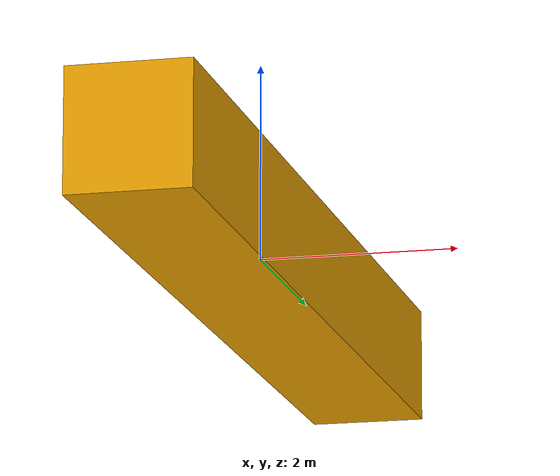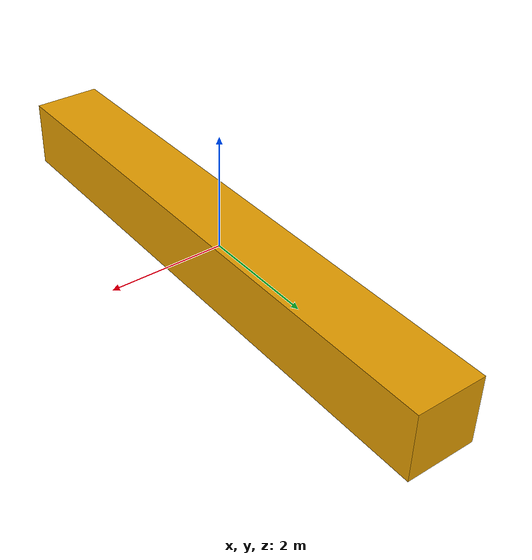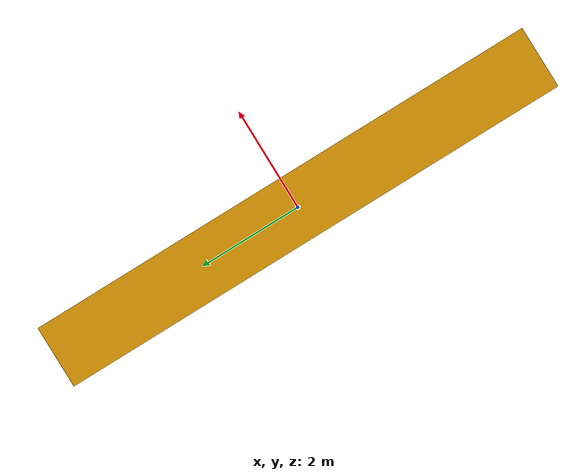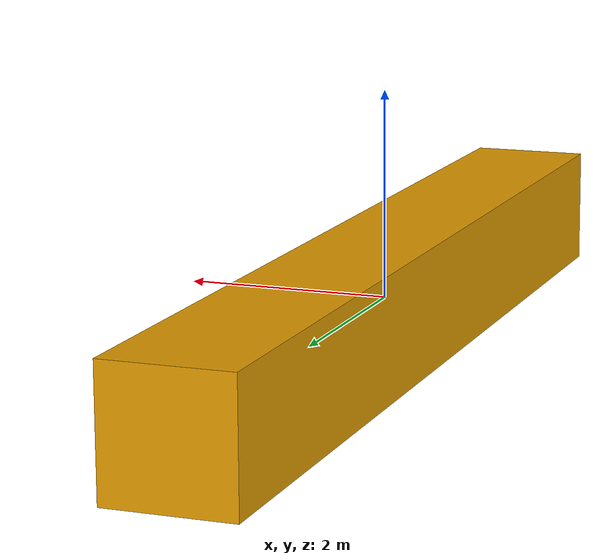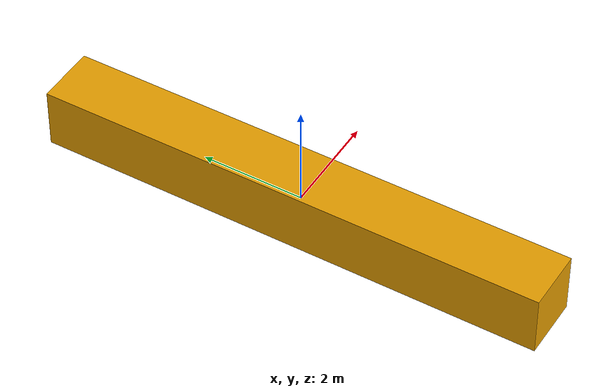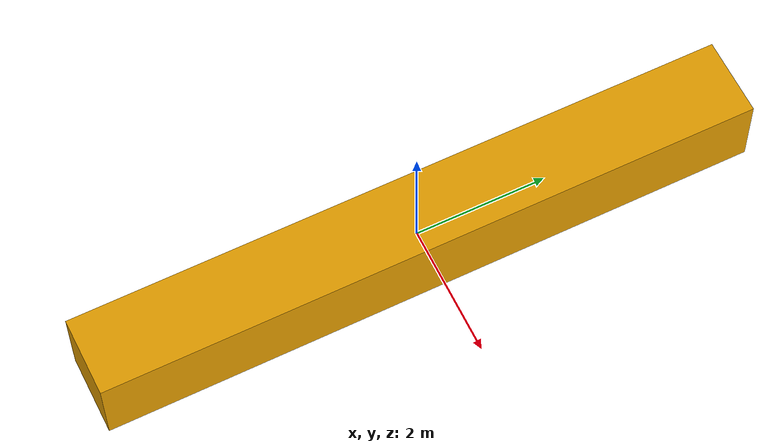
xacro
<?xml version="1.0"?>
<robot name="obstacle_3" xmlns:xacro="http://www.ros.org/wiki/xacro">
	<xacro:property name="pi" value="3.1415926535897931"/>
	<gazebo>
		<static>true</static>
		<turnGravityOff>false</turnGravityOff>
	</gazebo>
	<link name="base_link_3">
		<inertial>
			<origin xyz="0 0 0" rpy="0 0 0"/>
			<mass value="5"/>
			<inertia ixx="1.0" ixy="0.0" ixz="0.0" iyy="1.0" iyz="0.0" izz="1.0"/>
		</inertial>

		<collision name="collision">
			<origin xyz="0 0 0" rpy="0 0 0"/>
			<geometry>
				<box size="1.2 10 1.2" />
			</geometry>
		</collision>

		<visual name="visual">
			<origin xyz="0 0 0" rpy="0 0 0"/>
			<geometry>
				<box size="1.2 10 1.2" />
			</geometry>
		</visual>
	</link>

</robot>
